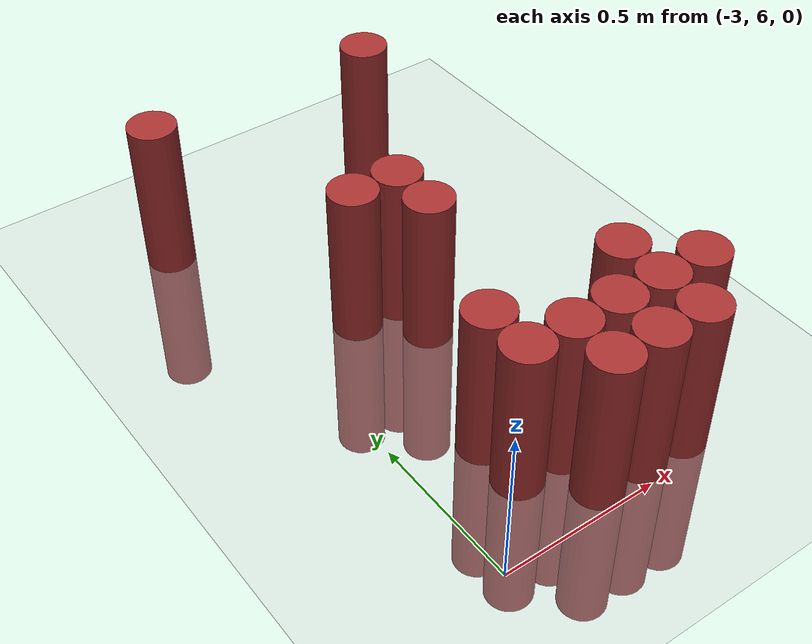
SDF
<sdf version="1.6">
 <world name="default">
  <model name="ground_plane">
   <static>1</static>
   <link name="link">
    <collision name="collision">
     <geometry><plane><normal>0 0 1</normal><size>100 100</size></plane></geometry>
     <surface><friction><ode><mu>100</mu><mu2>50</mu2></ode></friction></surface>
    </collision>
    <visual name="visual">
     <cast_shadows>0</cast_shadows>
     <geometry><plane><normal>0 0 1</normal><size>100 100</size></plane></geometry>
     <material>
      <script><uri>file://media/materials/scripts/gazebo.material</uri><name>Gazebo/Grey</name></script>
     </material>
    </visual>
   </link>
  </model>
  <model name="unit_cylinder_141">
   <static>1</static>
   <pose>-3.075000 7.575000 0.000000 0.000000 0.000000 0.000000</pose>
   <link name="link">
    <inertial>
     <mass>1</mass>
     <inertia><ixx>0.145833</ixx><ixy>0</ixy><ixz>0</ixz><iyy>0.145833</iyy><iyz>0</iyz><izz>0.125</izz></inertia>
    </inertial>
    <collision name="collision">
     <geometry><cylinder><radius>0.075000</radius><length>1</length></cylinder></geometry>
    </collision>
    <visual name="visual">
     <geometry><cylinder><radius>0.075000</radius><length>1</length></cylinder></geometry>
     <material>
      <ambient>0.648000 0.192000 0.192000 1</ambient>
      <diffuse>0.648000 0.192000 0.192000 1</diffuse>
     </material>
     <material>
      <script><name>Gazebo/Grey</name><uri>file://media/materials/scripts/gazebo.material</uri></script>
     </material>
    </visual>
   </link>
  </model>
  <model name="unit_cylinder_144">
   <static>1</static>
   <pose>-2.775000 6.225000 0.000000 0.000000 0.000000 0.000000</pose>
   <link name="link">
    <inertial>
     <mass>1</mass>
     <inertia><ixx>0.145833</ixx><ixy>0</ixy><ixz>0</ixz><iyy>0.145833</iyy><iyz>0</iyz><izz>0.125</izz></inertia>
    </inertial>
    <collision name="collision">
     <geometry><cylinder><radius>0.075000</radius><length>1</length></cylinder></geometry>
    </collision>
    <visual name="visual">
     <geometry><cylinder><radius>0.075000</radius><length>1</length></cylinder></geometry>
     <material>
      <ambient>0.648000 0.192000 0.192000 1</ambient>
      <diffuse>0.648000 0.192000 0.192000 1</diffuse>
     </material>
     <material>
      <script><name>Gazebo/Grey</name><uri>file://media/materials/scripts/gazebo.material</uri></script>
     </material>
    </visual>
   </link>
  </model>
  <model name="unit_cylinder_145">
   <static>1</static>
   <pose>-2.775000 6.375000 0.000000 0.000000 0.000000 0.000000</pose>
   <link name="link">
    <inertial>
     <mass>1</mass>
     <inertia><ixx>0.145833</ixx><ixy>0</ixy><ixz>0</ixz><iyy>0.145833</iyy><iyz>0</iyz><izz>0.125</izz></inertia>
    </inertial>
    <collision name="collision">
     <geometry><cylinder><radius>0.075000</radius><length>1</length></cylinder></geometry>
    </collision>
    <visual name="visual">
     <geometry><cylinder><radius>0.075000</radius><length>1</length></cylinder></geometry>
     <material>
      <ambient>0.648000 0.192000 0.192000 1</ambient>
      <diffuse>0.648000 0.192000 0.192000 1</diffuse>
     </material>
     <material>
      <script><name>Gazebo/Grey</name><uri>file://media/materials/scripts/gazebo.material</uri></script>
     </material>
    </visual>
   </link>
  </model>
  <model name="unit_cylinder_146">
   <static>1</static>
   <pose>-2.775000 6.975000 0.000000 0.000000 0.000000 0.000000</pose>
   <link name="link">
    <inertial>
     <mass>1</mass>
     <inertia><ixx>0.145833</ixx><ixy>0</ixy><ixz>0</ixz><iyy>0.145833</iyy><iyz>0</iyz><izz>0.125</izz></inertia>
    </inertial>
    <collision name="collision">
     <geometry><cylinder><radius>0.075000</radius><length>1</length></cylinder></geometry>
    </collision>
    <visual name="visual">
     <geometry><cylinder><radius>0.075000</radius><length>1</length></cylinder></geometry>
     <material>
      <ambient>0.648000 0.192000 0.192000 1</ambient>
      <diffuse>0.648000 0.192000 0.192000 1</diffuse>
     </material>
     <material>
      <script><name>Gazebo/Grey</name><uri>file://media/materials/scripts/gazebo.material</uri></script>
     </material>
    </visual>
   </link>
  </model>
  <model name="unit_cylinder_149">
   <static>1</static>
   <pose>-2.625000 6.075000 0.000000 0.000000 0.000000 0.000000</pose>
   <link name="link">
    <inertial>
     <mass>1</mass>
     <inertia><ixx>0.145833</ixx><ixy>0</ixy><ixz>0</ixz><iyy>0.145833</iyy><iyz>0</iyz><izz>0.125</izz></inertia>
    </inertial>
    <collision name="collision">
     <geometry><cylinder><radius>0.075000</radius><length>1</length></cylinder></geometry>
    </collision>
    <visual name="visual">
     <geometry><cylinder><radius>0.075000</radius><length>1</length></cylinder></geometry>
     <material>
      <ambient>0.648000 0.192000 0.192000 1</ambient>
      <diffuse>0.648000 0.192000 0.192000 1</diffuse>
     </material>
     <material>
      <script><name>Gazebo/Grey</name><uri>file://media/materials/scripts/gazebo.material</uri></script>
     </material>
    </visual>
   </link>
  </model>
  <model name="unit_cylinder_150">
   <static>1</static>
   <pose>-2.625000 6.225000 0.000000 0.000000 0.000000 0.000000</pose>
   <link name="link">
    <inertial>
     <mass>1</mass>
     <inertia><ixx>0.145833</ixx><ixy>0</ixy><ixz>0</ixz><iyy>0.145833</iyy><iyz>0</iyz><izz>0.125</izz></inertia>
    </inertial>
    <collision name="collision">
     <geometry><cylinder><radius>0.075000</radius><length>1</length></cylinder></geometry>
    </collision>
    <visual name="visual">
     <geometry><cylinder><radius>0.075000</radius><length>1</length></cylinder></geometry>
     <material>
      <ambient>0.648000 0.192000 0.192000 1</ambient>
      <diffuse>0.648000 0.192000 0.192000 1</diffuse>
     </material>
     <material>
      <script><name>Gazebo/Grey</name><uri>file://media/materials/scripts/gazebo.material</uri></script>
     </material>
    </visual>
   </link>
  </model>
  <model name="unit_cylinder_151">
   <static>1</static>
   <pose>-2.625000 6.825000 0.000000 0.000000 0.000000 0.000000</pose>
   <link name="link">
    <inertial>
     <mass>1</mass>
     <inertia><ixx>0.145833</ixx><ixy>0</ixy><ixz>0</ixz><iyy>0.145833</iyy><iyz>0</iyz><izz>0.125</izz></inertia>
    </inertial>
    <collision name="collision">
     <geometry><cylinder><radius>0.075000</radius><length>1</length></cylinder></geometry>
    </collision>
    <visual name="visual">
     <geometry><cylinder><radius>0.075000</radius><length>1</length></cylinder></geometry>
     <material>
      <ambient>0.648000 0.192000 0.192000 1</ambient>
      <diffuse>0.648000 0.192000 0.192000 1</diffuse>
     </material>
     <material>
      <script><name>Gazebo/Grey</name><uri>file://media/materials/scripts/gazebo.material</uri></script>
     </material>
    </visual>
   </link>
  </model>
  <model name="unit_cylinder_152">
   <static>1</static>
   <pose>-2.625000 6.975000 0.000000 0.000000 0.000000 0.000000</pose>
   <link name="link">
    <inertial>
     <mass>1</mass>
     <inertia><ixx>0.145833</ixx><ixy>0</ixy><ixz>0</ixz><iyy>0.145833</iyy><iyz>0</iyz><izz>0.125</izz></inertia>
    </inertial>
    <collision name="collision">
     <geometry><cylinder><radius>0.075000</radius><length>1</length></cylinder></geometry>
    </collision>
    <visual name="visual">
     <geometry><cylinder><radius>0.075000</radius><length>1</length></cylinder></geometry>
     <material>
      <ambient>0.648000 0.192000 0.192000 1</ambient>
      <diffuse>0.648000 0.192000 0.192000 1</diffuse>
     </material>
     <material>
      <script><name>Gazebo/Grey</name><uri>file://media/materials/scripts/gazebo.material</uri></script>
     </material>
    </visual>
   </link>
  </model>
  <model name="unit_cylinder_155">
   <static>1</static>
   <pose>-2.475000 6.075000 0.000000 0.000000 0.000000 0.000000</pose>
   <link name="link">
    <inertial>
     <mass>1</mass>
     <inertia><ixx>0.145833</ixx><ixy>0</ixy><ixz>0</ixz><iyy>0.145833</iyy><iyz>0</iyz><izz>0.125</izz></inertia>
    </inertial>
    <collision name="collision">
     <geometry><cylinder><radius>0.075000</radius><length>1</length></cylinder></geometry>
    </collision>
    <visual name="visual">
     <geometry><cylinder><radius>0.075000</radius><length>1</length></cylinder></geometry>
     <material>
      <ambient>0.648000 0.192000 0.192000 1</ambient>
      <diffuse>0.648000 0.192000 0.192000 1</diffuse>
     </material>
     <material>
      <script><name>Gazebo/Grey</name><uri>file://media/materials/scripts/gazebo.material</uri></script>
     </material>
    </visual>
   </link>
  </model>
  <model name="unit_cylinder_156">
   <static>1</static>
   <pose>-2.475000 6.225000 0.000000 0.000000 0.000000 0.000000</pose>
   <link name="link">
    <inertial>
     <mass>1</mass>
     <inertia><ixx>0.145833</ixx><ixy>0</ixy><ixz>0</ixz><iyy>0.145833</iyy><iyz>0</iyz><izz>0.125</izz></inertia>
    </inertial>
    <collision name="collision">
     <geometry><cylinder><radius>0.075000</radius><length>1</length></cylinder></geometry>
    </collision>
    <visual name="visual">
     <geometry><cylinder><radius>0.075000</radius><length>1</length></cylinder></geometry>
     <material>
      <ambient>0.648000 0.192000 0.192000 1</ambient>
      <diffuse>0.648000 0.192000 0.192000 1</diffuse>
     </material>
     <material>
      <script><name>Gazebo/Grey</name><uri>file://media/materials/scripts/gazebo.material</uri></script>
     </material>
    </visual>
   </link>
  </model>
  <model name="unit_cylinder_158">
   <static>1</static>
   <pose>-2.325000 6.075000 0.000000 0.000000 0.000000 0.000000</pose>
   <link name="link">
    <inertial>
     <mass>1</mass>
     <inertia><ixx>0.145833</ixx><ixy>0</ixy><ixz>0</ixz><iyy>0.145833</iyy><iyz>0</iyz><izz>0.125</izz></inertia>
    </inertial>
    <collision name="collision">
     <geometry><cylinder><radius>0.075000</radius><length>1</length></cylinder></geometry>
    </collision>
    <visual name="visual">
     <geometry><cylinder><radius>0.075000</radius><length>1</length></cylinder></geometry>
     <material>
      <ambient>0.648000 0.192000 0.192000 1</ambient>
      <diffuse>0.648000 0.192000 0.192000 1</diffuse>
     </material>
     <material>
      <script><name>Gazebo/Grey</name><uri>file://media/materials/scripts/gazebo.material</uri></script>
     </material>
    </visual>
   </link>
  </model>
  <model name="unit_cylinder_159">
   <static>1</static>
   <pose>-2.325000 6.225000 0.000000 0.000000 0.000000 0.000000</pose>
   <link name="link">
    <inertial>
     <mass>1</mass>
     <inertia><ixx>0.145833</ixx><ixy>0</ixy><ixz>0</ixz><iyy>0.145833</iyy><iyz>0</iyz><izz>0.125</izz></inertia>
    </inertial>
    <collision name="collision">
     <geometry><cylinder><radius>0.075000</radius><length>1</length></cylinder></geometry>
    </collision>
    <visual name="visual">
     <geometry><cylinder><radius>0.075000</radius><length>1</length></cylinder></geometry>
     <material>
      <ambient>0.648000 0.192000 0.192000 1</ambient>
      <diffuse>0.648000 0.192000 0.192000 1</diffuse>
     </material>
     <material>
      <script><name>Gazebo/Grey</name><uri>file://media/materials/scripts/gazebo.material</uri></script>
     </material>
    </visual>
   </link>
  </model>
  <model name="unit_cylinder_160">
   <static>1</static>
   <pose>-2.325000 6.375000 0.000000 0.000000 0.000000 0.000000</pose>
   <link name="link">
    <inertial>
     <mass>1</mass>
     <inertia><ixx>0.145833</ixx><ixy>0</ixy><ixz>0</ixz><iyy>0.145833</iyy><iyz>0</iyz><izz>0.125</izz></inertia>
    </inertial>
    <collision name="collision">
     <geometry><cylinder><radius>0.075000</radius><length>1</length></cylinder></geometry>
    </collision>
    <visual name="visual">
     <geometry><cylinder><radius>0.075000</radius><length>1</length></cylinder></geometry>
     <material>
      <ambient>0.648000 0.192000 0.192000 1</ambient>
      <diffuse>0.648000 0.192000 0.192000 1</diffuse>
     </material>
     <material>
      <script><name>Gazebo/Grey</name><uri>file://media/materials/scripts/gazebo.material</uri></script>
     </material>
    </visual>
   </link>
  </model>
  <model name="unit_cylinder_161">
   <static>1</static>
   <pose>-2.325000 7.575000 0.000000 0.000000 0.000000 0.000000</pose>
   <link name="link">
    <inertial>
     <mass>1</mass>
     <inertia><ixx>0.145833</ixx><ixy>0</ixy><ixz>0</ixz><iyy>0.145833</iyy><iyz>0</iyz><izz>0.125</izz></inertia>
    </inertial>
    <collision name="collision">
     <geometry><cylinder><radius>0.075000</radius><length>1</length></cylinder></geometry>
    </collision>
    <visual name="visual">
     <geometry><cylinder><radius>0.075000</radius><length>1</length></cylinder></geometry>
     <material>
      <ambient>0.648000 0.192000 0.192000 1</ambient>
      <diffuse>0.648000 0.192000 0.192000 1</diffuse>
     </material>
     <material>
      <script><name>Gazebo/Grey</name><uri>file://media/materials/scripts/gazebo.material</uri></script>
     </material>
    </visual>
   </link>
  </model>
  <model name="unit_cylinder_163">
   <static>1</static>
   <pose>-2.175000 6.225000 0.000000 0.000000 0.000000 0.000000</pose>
   <link name="link">
    <inertial>
     <mass>1</mass>
     <inertia><ixx>0.145833</ixx><ixy>0</ixy><ixz>0</ixz><iyy>0.145833</iyy><iyz>0</iyz><izz>0.125</izz></inertia>
    </inertial>
    <collision name="collision">
     <geometry><cylinder><radius>0.075000</radius><length>1</length></cylinder></geometry>
    </collision>
    <visual name="visual">
     <geometry><cylinder><radius>0.075000</radius><length>1</length></cylinder></geometry>
     <material>
      <ambient>0.648000 0.192000 0.192000 1</ambient>
      <diffuse>0.648000 0.192000 0.192000 1</diffuse>
     </material>
     <material>
      <script><name>Gazebo/Grey</name><uri>file://media/materials/scripts/gazebo.material</uri></script>
     </material>
    </visual>
   </link>
  </model>
 </world>
</sdf>
